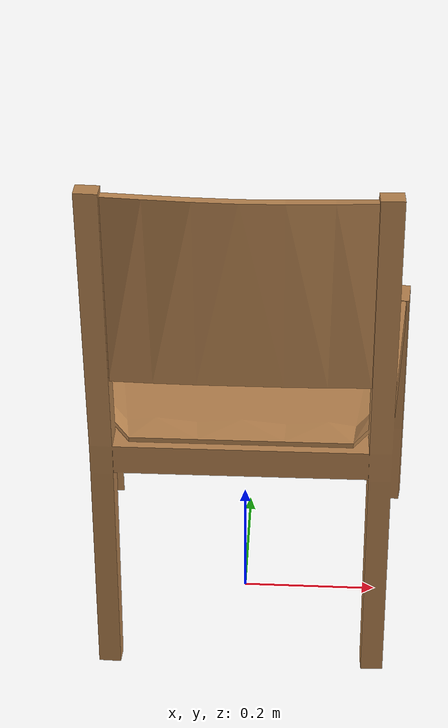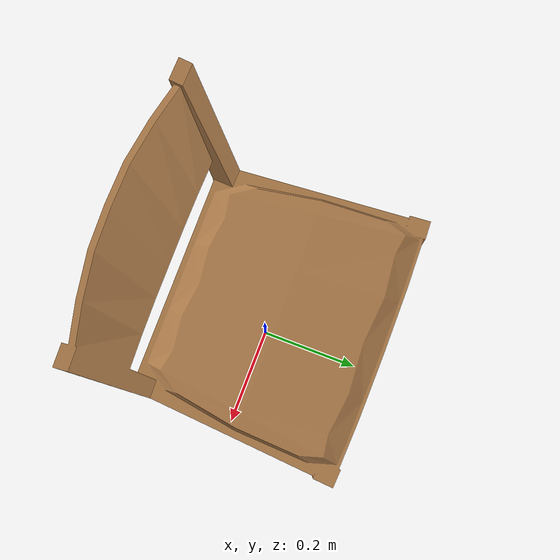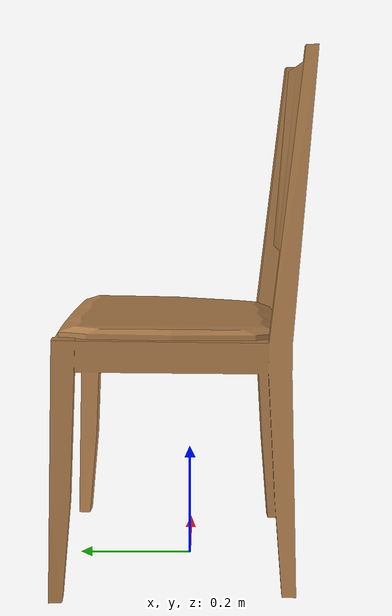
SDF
<?xml version="1.0" ?>
<sdf version="1.0">
  <model name="chair">
    <static>true</static>
    <link name="chair">
      <collision name="chair">
        <pose>0 0 0 0 0 0</pose>
        <geometry>
          <mesh>
            <uri>model://chair/meshes/model.dae</uri>
          </mesh>
        </geometry>
      </collision>

      <visual name="chair_mesh">
	  <cast_shadows>true</cast_shadows>
        <geometry>
          <mesh>
	        <uri>model://chair/meshes/model.dae</uri>
	      </mesh>
        </geometry>
	<material>
          <script>
            <uri>model://chair/materials/scripts</uri>
            <uri>model://chair/materials/textures</uri>
            <name>Chair/Wood</name>
          </script>
        </material>
      </visual>
    </link>
  </model>
</sdf>
